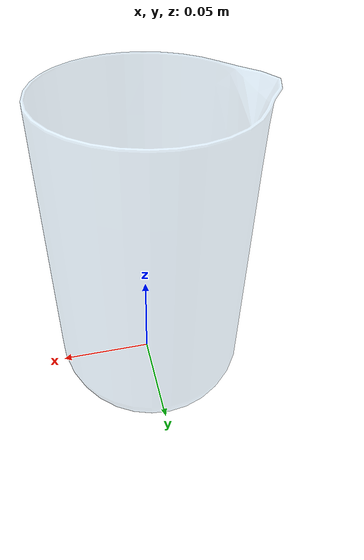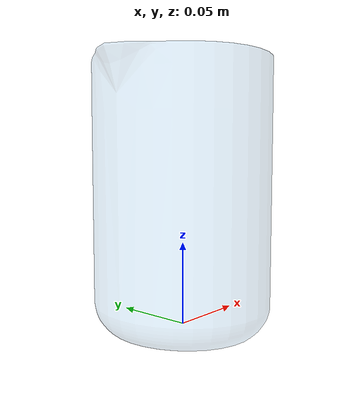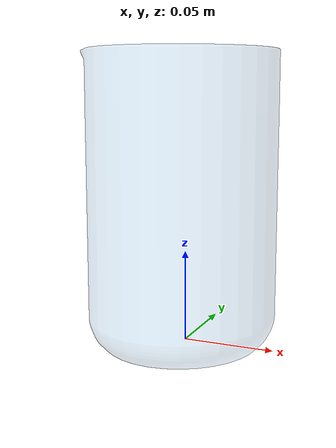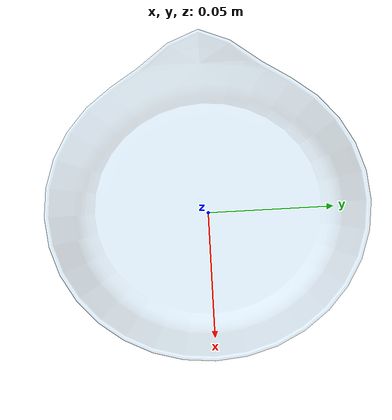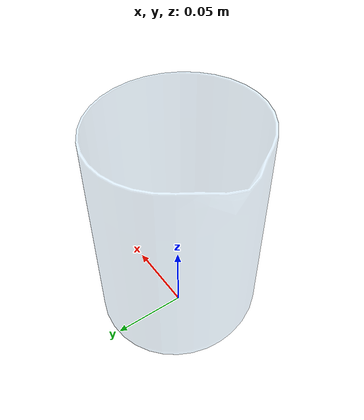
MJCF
<mujoco model="Beaker">

  <compiler angle="radian" meshdir="../../assets" />

  <option gravity="0 0 -9.81" />

  <asset>

    <mesh name="beaker_mesh" file="Beaker/base.obj" scale="2.990000 2.990000 3.220000" />
  </asset>

  <worldbody>

    <body name="beaker" quat="0.7071 0.7071 0 0" pos="0.333500 0.000000 -0.000000">

      <geom name="beaker_visual" type="mesh" mesh="beaker_mesh" rgba="0.65 0.85 1.0 0.3" contype="0" conaffinity="0" />

      <geom name="glass_sheet_collision_2" type="cylinder" size="0.049220 0.004600" pos="-0.336950 0.005635 -0.000000" euler="1.5708 0 0" contype="1" conaffinity="1" friction="0.6 0.2 0.001" density="2500" rgba="0 0 0 0" />
      <geom name="ring_1" type="box" size="0.023000 0.080500 0.002300" pos="-0.334650 0.082800 -0.050600" density="2500" contype="1" conaffinity="1" rgba="0 0 0 0" />
      <geom name="ring_2" type="box" size="0.023000 0.080500 0.002300" pos="-0.334650 0.082800 0.050600" density="2500" contype="1" conaffinity="1" rgba="0 0 0 0" />
      <geom name="ring_3" type="box" size="0.023000 0.080500 0.002300" pos="-0.287500 0.082800 -0.000000" density="2500" contype="1" conaffinity="1" euler="0 1.5708 0" rgba="0 0 0 0" />
      <geom name="ring_4" type="box" size="0.023000 0.080500 0.002300" density="2500" pos="-0.391000 0.082800 -0.000000" contype="1" conaffinity="1" euler="0 1.5708 0" rgba="0 0 0 0" />
      <geom name="ring_5" type="box" size="0.023000 0.080500 0.002300" pos="-0.375820 0.082800 -0.035190" density="2500" contype="1" conaffinity="1" euler="0 0.7854 0" rgba="0 0 0 0" />
      <geom name="ring_6" type="box" size="0.023000 0.080500 0.002300" pos="-0.301300 0.082800 0.035190" density="2500" contype="1" conaffinity="1" euler="0 0.7854 0" rgba="0 0 0 0" />
      <geom name="ring_7" type="box" size="0.023000 0.080500 0.002300" pos="-0.375820 0.082800 0.035190" density="2500" contype="1" conaffinity="1" euler="0 -0.7854 0" rgba="0 0 0 0" />
      <geom name="ring_8" type="box" size="0.023000 0.080500 0.002300" pos="-0.301300 0.082800 -0.035190" density="2500" contype="1" conaffinity="1" euler="0 -0.7854 0" rgba="0 0 0 0" />
    </body>
  </worldbody>
</mujoco>
